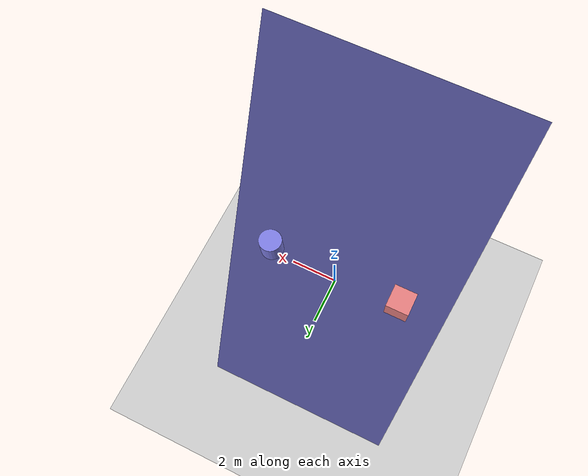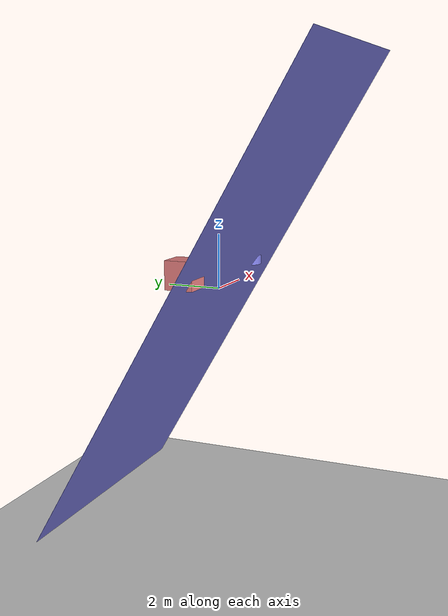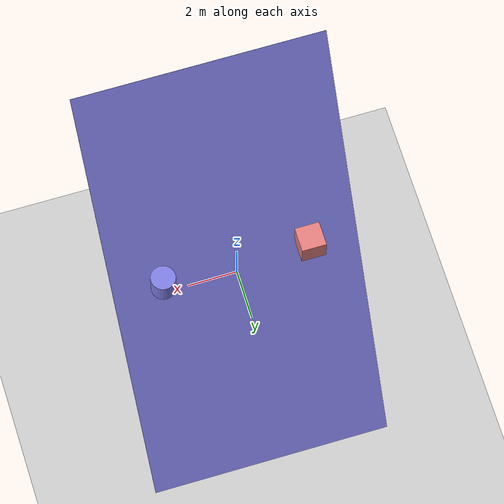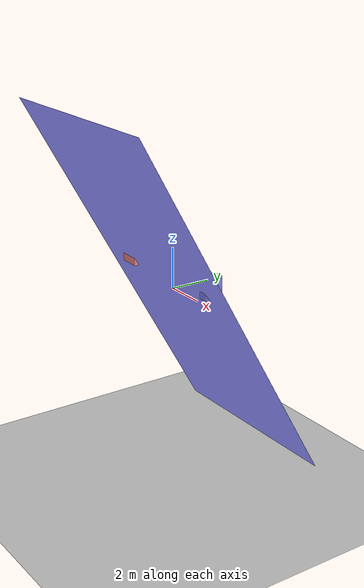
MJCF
<mujoco>
  <option gravity="0 0 -9.81"/>
  <worldbody>
    <body name="inclined_plane" pos="0 0 0">
      <geom type="plane" size="5 10 0.1" rgba="0.5 0.5 0.9 1" friction="0.8 0.8 0.8" quat="0.5 0.86 0 0"/>
    </body>
    <body name="surface" pos="-10 0 -10">
      <geom type="plane" size="25 25 0.1" rgba="0.8 0.8 0.8 1"/>
    </body>
    <body name="box" pos="-3 0 1">
      <geom type="box" size="0.5 0.5 0.5" density="1" rgba="0.9 0.5 0.5 1"/>
      <joint type="free"/>
    </body>
    <body name="cylinder" pos="3 0 1">
      <geom type="cylinder" size="0.5 0.5" density="1" rgba="0.5 0.5 0.9 1"/>
      <joint type="free"/>
    </body>
  </worldbody>
</mujoco>
